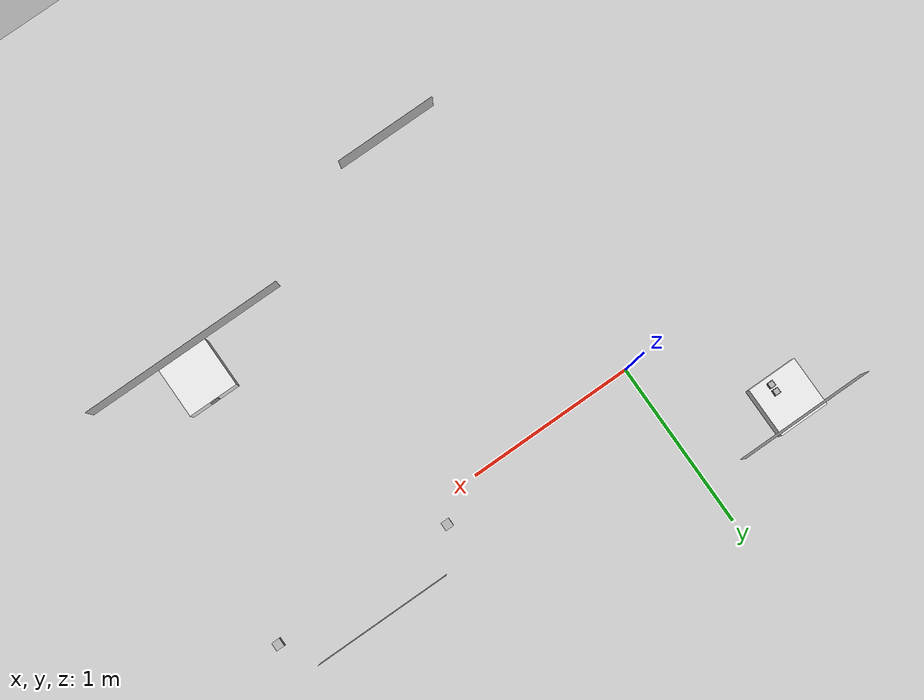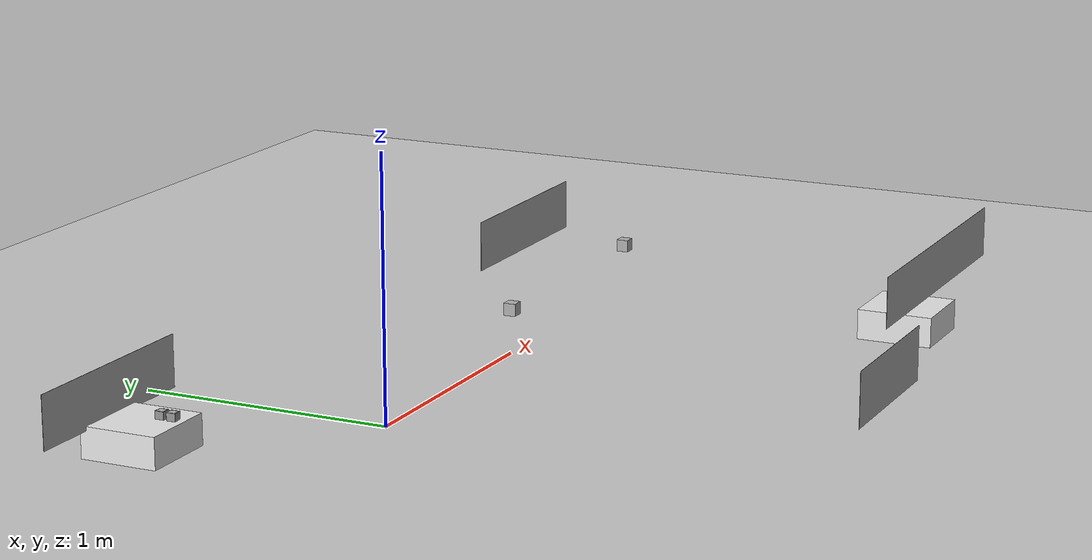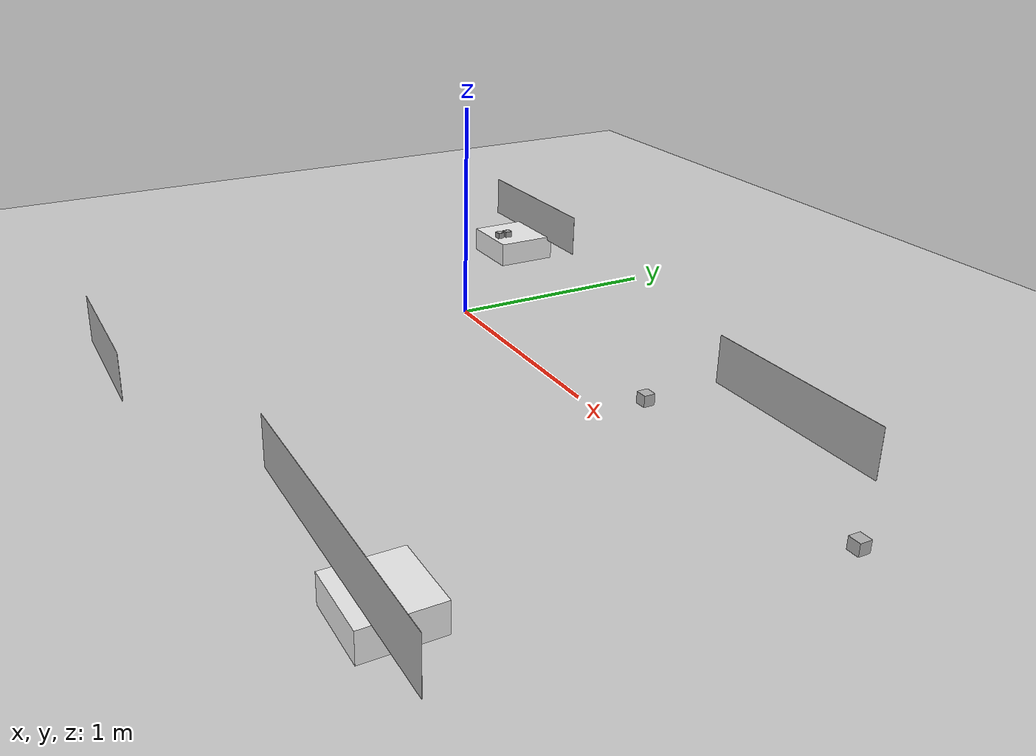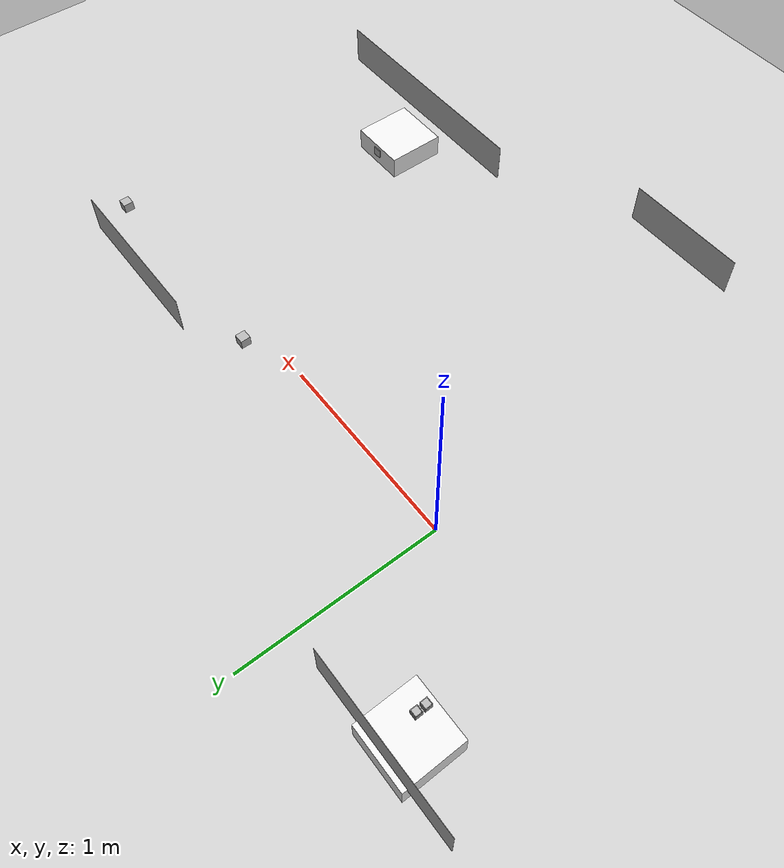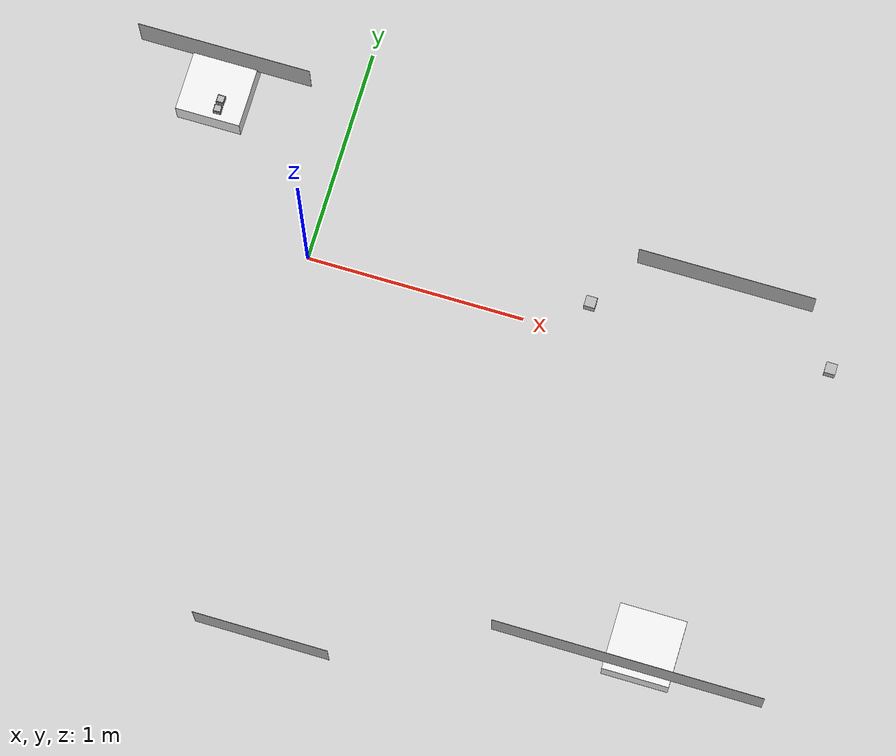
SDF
<sdf version="1.6">
 <world name="default">
  <model name="ground_plane">
   <static>1</static>
   <link name="link">
    <collision name="collision">
     <geometry><plane><normal>0 0 1</normal><size>100 100</size></plane></geometry>
     <surface><friction><ode><mu>100</mu><mu2>50</mu2></ode></friction></surface>
    </collision>
    <visual name="visual">
     <cast_shadows>0</cast_shadows>
     <geometry><plane><normal>0 0 1</normal><size>100 100</size></plane></geometry>
     <material>
      <script><uri>file://media/materials/scripts/gazebo.material</uri><name>Gazebo/Grey</name></script>
     </material>
    </visual>
   </link>
  </model>
  <model name="ar_box0_50_clone">
   <link name="link_0">
    <inertial>
     <mass>1.87342e-05</mass>
     <inertia>
      <ixx>9.25984e-08</ixx>
      <ixy>0</ixy>
      <ixz>0</ixz>
      <iyy>1.0155e-07</iyy>
      <iyz>0</iyz>
      <izz>1.22113e-07</izz>
     </inertia>
    </inertial>
    <visual name="visual">
     <geometry><box><size>0.05 0.05 0.05</size></box></geometry>
     <material>
      <lighting>1</lighting>
      <script>
       <uri>model://ar_box0_50/materials/scripts</uri>
       <uri>model://ar_box0_50/materials/textures</uri>
       <name>ArBox050/Image</name>
      </script>
      <ambient>0.3 0.3 0.3 1</ambient>
      <diffuse>0.7 0.7 0.7 1</diffuse>
      <specular>0.01 0.01 0.01 1</specular>
      <emissive>1 1 1 1</emissive>
     </material>
     <cast_shadows>0</cast_shadows>
    </visual>
   </link>
   <static>1</static>
   <pose>1.27243 0.128216 0.095465 0.005535 -1.6e-05 3.14155</pose>
  </model>
  <model name="ar_box0_50_clone_0">
   <link name="link_0">
    <inertial>
     <mass>1.87342e-05</mass>
     <inertia>
      <ixx>9.25984e-08</ixx>
      <ixy>0</ixy>
      <ixz>0</ixz>
      <iyy>1.0155e-07</iyy>
      <iyz>0</iyz>
      <izz>1.22113e-07</izz>
     </inertia>
    </inertial>
    <visual name="visual">
     <geometry><box><size>0.05 0.05 0.05</size></box></geometry>
     <material>
      <lighting>1</lighting>
      <script>
       <uri>model://ar_box0_50/materials/scripts</uri>
       <uri>model://ar_box0_50/materials/textures</uri>
       <name>ArBox050/Image</name>
      </script>
      <ambient>0.3 0.3 0.3 1</ambient>
      <diffuse>0.7 0.7 0.7 1</diffuse>
      <specular>0.01 0.01 0.01 1</specular>
      <emissive>1 1 1 1</emissive>
     </material>
     <cast_shadows>0</cast_shadows>
    </visual>
   </link>
   <static>1</static>
   <pose>2.36998 0.133385 0.097159 0.005535 -1.6e-05 3.14155</pose>
  </model>
  <model name="Textcnc_clone">
   <link name="link_0">
    <inertial>
     <mass>1</mass>
     <inertia>
      <ixx>0.166667</ixx>
      <ixy>0</ixy>
      <ixz>0</ixz>
      <iyy>0.166667</iyy>
      <iyz>0</iyz>
      <izz>0.166667</izz>
     </inertia>
    </inertial>
    <visual name="visual">
     <geometry><box><size>0.8 0.001 0.2</size></box></geometry>
     <material>
      <lighting>1</lighting>
      <script>
       <uri>model://Text/materials/scripts</uri>
       <uri>model://Text/materials/textures</uri>
       <name>Cnc/Image</name>
      </script>
      <ambient>0.3 0.3 0.3 1</ambient>
      <diffuse>0.7 0.7 0.7 1</diffuse>
      <specular>0.01 0.01 0.01 1</specular>
      <emissive>0 0 0 1</emissive>
      <shader type="vertex"><normal_map>__default__</normal_map></shader>
     </material>
     <cast_shadows>0</cast_shadows>
    </visual>
    <collision name="collision">
     <geometry><box><size>0.001 0.001 0.001</size></box></geometry>
     <surface>
      <friction>
       <ode><mu>1</mu><mu2>1</mu2><fdir1>0 0 0</fdir1><slip1>0</slip1><slip2>0</slip2></ode>
       <torsional>
        <coefficient>1</coefficient>
        <patch_radius>0</patch_radius>
        <surface_radius>0</surface_radius>
        <use_patch_radius>1</use_patch_radius>
        <ode><slip>0</slip></ode>
       </torsional>
      </friction>
      <bounce><restitution_coefficient>0</restitution_coefficient><threshold>1e+06</threshold></bounce>
      <contact>
       <collide_without_contact>0</collide_without_contact>
       <collide_without_contact_bitmask>1</collide_without_contact_bitmask>
       <collide_bitmask>1</collide_bitmask>
       <ode>
        <soft_cfm>0</soft_cfm>
        <soft_erp>0.2</soft_erp>
        <kp>1e+13</kp>
        <kd>1</kd>
        <max_vel>0.01</max_vel>
        <min_depth>0</min_depth>
       </ode>
       <bullet>
        <split_impulse>1</split_impulse>
        <split_impulse_penetration_threshold>-0.01</split_impulse_penetration_threshold>
        <soft_cfm>0</soft_cfm>
        <soft_erp>0.2</soft_erp>
        <kp>1e+13</kp>
        <kd>1</kd>
       </bullet>
      </contact>
     </surface>
    </collision>
   </link>
   <static>1</static>
   <pose>1.82386 0.341579 0.286139 0 -0 0</pose>
  </model>
  <model name="TextRecycle">
   <link name="link_0">
    <inertial>
     <mass>1</mass>
     <inertia>
      <ixx>0.166667</ixx>
      <ixy>0</ixy>
      <ixz>0</ixz>
      <iyy>0.166667</iyy>
      <iyz>0</iyz>
      <izz>0.166667</izz>
     </inertia>
    </inertial>
    <visual name="visual">
     <geometry><box><size>0.6 0.001 0.2</size></box></geometry>
     <material>
      <lighting>1</lighting>
      <script>
       <uri>model://Text/materials/scripts</uri>
       <uri>model://Text/materials/textures</uri>
       <name>Recycle/Image</name>
      </script>
      <ambient>0.3 0.3 0.3 1</ambient>
      <diffuse>0.7 0.7 0.7 1</diffuse>
      <specular>0.01 0.01 0.01 1</specular>
      <emissive>0 0 0 1</emissive>
      <shader type="vertex"><normal_map>__default__</normal_map></shader>
     </material>
     <cast_shadows>0</cast_shadows>
    </visual>
    <collision name="collision">
     <geometry><box><size>0.001 0.001 0.001</size></box></geometry>
     <surface>
      <friction>
       <ode><mu>1</mu><mu2>1</mu2><fdir1>0 0 0</fdir1><slip1>0</slip1><slip2>0</slip2></ode>
       <torsional>
        <coefficient>1</coefficient>
        <patch_radius>0</patch_radius>
        <surface_radius>0</surface_radius>
        <use_patch_radius>1</use_patch_radius>
        <ode><slip>0</slip></ode>
       </torsional>
      </friction>
      <bounce><restitution_coefficient>0</restitution_coefficient><threshold>1e+06</threshold></bounce>
      <contact>
       <collide_without_contact>0</collide_without_contact>
       <collide_without_contact_bitmask>1</collide_without_contact_bitmask>
       <collide_bitmask>1</collide_bitmask>
       <ode>
        <soft_cfm>0</soft_cfm>
        <soft_erp>0.2</soft_erp>
        <kp>1e+13</kp>
        <kd>1</kd>
        <max_vel>0.01</max_vel>
        <min_depth>0</min_depth>
       </ode>
       <bullet>
        <split_impulse>1</split_impulse>
        <split_impulse_penetration_threshold>-0.01</split_impulse_penetration_threshold>
        <soft_cfm>0</soft_cfm>
        <soft_erp>0.2</soft_erp>
        <kp>1e+13</kp>
        <kd>1</kd>
       </bullet>
      </contact>
     </surface>
    </collision>
   </link>
   <static>1</static>
   <pose>0.346909 -1.75225 0.32407 0 -0 0</pose>
  </model>
  <model name="Text-AO">
   <link name="link_0">
    <inertial>
     <mass>1</mass>
     <inertia>
      <ixx>0.166667</ixx>
      <ixy>0</ixy>
      <ixz>0</ixz>
      <iyy>0.166667</iyy>
      <iyz>0</iyz>
      <izz>0.166667</izz>
     </inertia>
    </inertial>
    <visual name="visual">
     <geometry><box><size>1.2 0.001 0.2</size></box></geometry>
     <material>
      <lighting>1</lighting>
      <script>
       <uri>model://Text/materials/scripts</uri>
       <uri>model://Text/materials/textures</uri>
       <name>AO/Image</name>
      </script>
      <ambient>0.3 0.3 0.3 1</ambient>
      <diffuse>0.7 0.7 0.7 1</diffuse>
      <specular>0.01 0.01 0.01 1</specular>
      <emissive>0 0 0 1</emissive>
      <shader type="vertex"><normal_map>__default__</normal_map></shader>
     </material>
     <cast_shadows>0</cast_shadows>
    </visual>
    <collision name="collision">
     <geometry><box><size>0.001 0.001 0.001</size></box></geometry>
     <surface>
      <friction>
       <ode><mu>1</mu><mu2>1</mu2><fdir1>0 0 0</fdir1><slip1>0</slip1><slip2>0</slip2></ode>
       <torsional>
        <coefficient>1</coefficient>
        <patch_radius>0</patch_radius>
        <surface_radius>0</surface_radius>
        <use_patch_radius>1</use_patch_radius>
        <ode><slip>0</slip></ode>
       </torsional>
      </friction>
      <bounce><restitution_coefficient>0</restitution_coefficient><threshold>1e+06</threshold></bounce>
      <contact>
       <collide_without_contact>0</collide_without_contact>
       <collide_without_contact_bitmask>1</collide_without_contact_bitmask>
       <collide_bitmask>1</collide_bitmask>
       <ode>
        <soft_cfm>0</soft_cfm>
        <soft_erp>0.2</soft_erp>
        <kp>1e+13</kp>
        <kd>1</kd>
        <max_vel>0.01</max_vel>
        <min_depth>0</min_depth>
       </ode>
       <bullet>
        <split_impulse>1</split_impulse>
        <split_impulse_penetration_threshold>-0.01</split_impulse_penetration_threshold>
        <soft_cfm>0</soft_cfm>
        <soft_erp>0.2</soft_erp>
        <kp>1e+13</kp>
        <kd>1</kd>
       </bullet>
      </contact>
     </surface>
    </collision>
   </link>
   <static>1</static>
   <pose>1.87367 -1.42218 0.302279 0 -0 0</pose>
  </model>
  <model name="Textdepot">
   <link name="link_0">
    <inertial>
     <mass>1</mass>
     <inertia>
      <ixx>0.166667</ixx>
      <ixy>0</ixy>
      <ixz>0</ixz>
      <iyy>0.166667</iyy>
      <iyz>0</iyz>
      <izz>0.166667</izz>
     </inertia>
    </inertial>
    <visual name="visual">
     <geometry><box><size>0.8 0.001 0.2</size></box></geometry>
     <material>
      <lighting>1</lighting>
      <script>
       <uri>model://Text/materials/scripts</uri>
       <uri>model://Text/materials/textures</uri>
       <name>Depot/Image</name>
      </script>
      <ambient>0.3 0.3 0.3 1</ambient>
      <diffuse>0.7 0.7 0.7 1</diffuse>
      <specular>0.01 0.01 0.01 1</specular>
      <emissive>0 0 0 1</emissive>
      <shader type="vertex"><normal_map>__default__</normal_map></shader>
     </material>
     <cast_shadows>0</cast_shadows>
    </visual>
    <collision name="collision">
     <geometry><box><size>0.001 0.001 0.001</size></box></geometry>
     <surface>
      <friction>
       <ode><mu>1</mu><mu2>1</mu2><fdir1>0 0 0</fdir1><slip1>0</slip1><slip2>0</slip2></ode>
       <torsional>
        <coefficient>1</coefficient>
        <patch_radius>0</patch_radius>
        <surface_radius>0</surface_radius>
        <use_patch_radius>1</use_patch_radius>
        <ode><slip>0</slip></ode>
       </torsional>
      </friction>
      <bounce><restitution_coefficient>0</restitution_coefficient><threshold>1e+06</threshold></bounce>
      <contact>
       <collide_without_contact>0</collide_without_contact>
       <collide_without_contact_bitmask>1</collide_without_contact_bitmask>
       <collide_bitmask>1</collide_bitmask>
       <ode>
        <soft_cfm>0</soft_cfm>
        <soft_erp>0.2</soft_erp>
        <kp>1e+13</kp>
        <kd>1</kd>
        <max_vel>0.01</max_vel>
        <min_depth>0</min_depth>
       </ode>
       <bullet>
        <split_impulse>1</split_impulse>
        <split_impulse_penetration_threshold>-0.01</split_impulse_penetration_threshold>
        <soft_cfm>0</soft_cfm>
        <soft_erp>0.2</soft_erp>
        <kp>1e+13</kp>
        <kd>1</kd>
       </bullet>
      </contact>
     </surface>
    </collision>
   </link>
   <static>1</static>
   <pose>-0.609677 0.745573 0.206607 0 -0 0</pose>
  </model>
  <model name="ar_box0_50_1">
   <link name="link_0">
    <inertial>
     <mass>1.87342e-05</mass>
     <inertia>
      <ixx>9.25984e-08</ixx>
      <ixy>0</ixy>
      <ixz>0</ixz>
      <iyy>1.0155e-07</iyy>
      <iyz>0</iyz>
      <izz>1.22113e-07</izz>
     </inertia>
    </inertial>
    <visual name="visual">
     <geometry><box><size>0.05 0.05 0.05</size></box></geometry>
     <material>
      <lighting>1</lighting>
      <script>
       <uri>model://ar_box0_50/materials/scripts</uri>
       <uri>model://ar_box0_50/materials/textures</uri>
       <name>ArBox050/Image</name>
      </script>
      <ambient>0.3 0.3 0.3 1</ambient>
      <diffuse>0.7 0.7 0.7 1</diffuse>
      <specular>0.01 0.01 0.01 1</specular>
      <emissive>1 1 1 1</emissive>
     </material>
     <cast_shadows>0</cast_shadows>
    </visual>
   </link>
   <static>1</static>
   <pose>1.91793 -1.15711 0.071038 0 -0 0</pose>
  </model>
  <model name="charge_static_2">
   <link name="link_0">
    <pose>0.001175 0.064666 -0.007829 0 -0 0</pose>
    <inertial>
     <mass>50</mass>
     <inertia>
      <ixx>0.166667</ixx>
      <ixy>0</ixy>
      <ixz>0</ixz>
      <iyy>0.166667</iyy>
      <iyz>0</iyz>
      <izz>0.166667</izz>
     </inertia>
    </inertial>
    <visual name="visual">
     <geometry><box><size>0.3 0.3 0.12</size></box></geometry>
     <material>
      <lighting>1</lighting>
      <script><uri>file://media/materials/scripts/gazebo.material</uri><name>Gazebo/White</name></script>
      <ambient>0.3 0.3 0.3 1</ambient>
      <diffuse>0.7 0.7 0.7 1</diffuse>
      <specular>0.01 0.01 0.01 1</specular>
      <emissive>0 0 1 1</emissive>
      <shader type="vertex"><normal_map>__default__</normal_map></shader>
     </material>
    </visual>
    <collision name="collision">
     <geometry><box><size>0.3 0.3 0.12</size></box></geometry>
     <surface>
      <friction><ode><mu>100</mu><mu2>50</mu2></ode></friction>
      <bounce><restitution_coefficient>0</restitution_coefficient><threshold>1e+06</threshold></bounce>
      <contact>
       <collide_without_contact>0</collide_without_contact>
       <collide_without_contact_bitmask>1</collide_without_contact_bitmask>
       <collide_bitmask>1</collide_bitmask>
       <ode>
        <soft_cfm>0</soft_cfm>
        <soft_erp>0.2</soft_erp>
        <kp>1e+13</kp>
        <kd>1</kd>
        <max_vel>0.01</max_vel>
        <min_depth>0</min_depth>
       </ode>
       <bullet>
        <split_impulse>1</split_impulse>
        <split_impulse_penetration_threshold>-0.01</split_impulse_penetration_threshold>
        <soft_cfm>0</soft_cfm>
        <soft_erp>0.2</soft_erp>
        <kp>1e+13</kp>
        <kd>1</kd>
       </bullet>
      </contact>
     </surface>
    </collision>
   </link>
   <static>1</static>
   <pose>-0.614633 0.55538 0.070826 0 -0 0</pose>
  </model>
  <model name="ar_box2_one">
   <link name="link_0">
    <inertial>
     <mass>0.2</mass>
     <inertia>
      <ixx>0.166667</ixx>
      <ixy>0</ixy>
      <ixz>0</ixz>
      <iyy>0.166667</iyy>
      <iyz>0</iyz>
      <izz>0.166667</izz>
     </inertia>
    </inertial>
    <visual name="visual">
     <geometry><box><size>0.035 0.035 0.03</size></box></geometry>
     <material>
      <lighting>1</lighting>
      <script><uri>file://media/materials/scripts/gazebo.material</uri><name>Gazebo/Grey</name></script>
      <ambient>0.3 0.3 0.3 1</ambient>
      <diffuse>0.7 0.7 0.7 1</diffuse>
      <specular>0.01 0.01 0.01 1</specular>
      <emissive>1 1 1 1</emissive>
      <shader type="vertex"><normal_map>__default__</normal_map></shader>
     </material>
    </visual>
    <collision name="collision">
     <geometry><cylinder><radius>0.0214</radius><length>0.03</length></cylinder></geometry>
     <surface>
      <friction><ode><mu>1</mu><mu2>1</mu2></ode></friction>
      <bounce><restitution_coefficient>0</restitution_coefficient><threshold>1e+06</threshold></bounce>
      <contact>
       <collide_without_contact>0</collide_without_contact>
       <collide_without_contact_bitmask>1</collide_without_contact_bitmask>
       <collide_bitmask>1</collide_bitmask>
       <ode>
        <soft_cfm>0</soft_cfm>
        <soft_erp>0.2</soft_erp>
        <kp>1e+13</kp>
        <kd>1</kd>
        <max_vel>0.01</max_vel>
        <min_depth>0</min_depth>
       </ode>
       <bullet>
        <split_impulse>1</split_impulse>
        <split_impulse_penetration_threshold>-0.01</split_impulse_penetration_threshold>
        <soft_cfm>0</soft_cfm>
        <soft_erp>0.2</soft_erp>
        <kp>1e+13</kp>
        <kd>1</kd>
       </bullet>
      </contact>
     </surface>
    </collision>
   </link>
   <model name="ar_box2">
    <link name="link_0">
     <inertial>
      <mass>1.87342e-05</mass>
      <inertia>
       <ixx>9.25984e-08</ixx>
       <ixy>0</ixy>
       <ixz>0</ixz>
       <iyy>1.0155e-07</iyy>
       <iyz>0</iyz>
       <izz>1.22113e-07</izz>
      </inertia>
     </inertial>
     <visual name="visual">
      <geometry><box><size>0.0298 0.0298 0.0305</size></box></geometry>
      <material>
       <lighting>1</lighting>
       <script>
        <uri>model://ar_box2/materials/scripts</uri>
        <uri>model://ar_box2/materials/textures</uri>
        <name>ArBox2/Image</name>
       </script>
       <ambient>0.3 0.3 0.3 1</ambient>
       <diffuse>0.7 0.7 0.7 1</diffuse>
       <specular>0.01 0.01 0.01 1</specular>
       <emissive>1 1 1 1</emissive>
      </material>
      <cast_shadows>0</cast_shadows>
     </visual>
     <collision name="collision">
      <geometry><box><size>0.03 0.03 0.03</size></box></geometry>
      <surface>
       <friction><ode><mu>2</mu><mu2>2</mu2></ode></friction>
       <bounce><restitution_coefficient>0</restitution_coefficient><threshold>1e+06</threshold></bounce>
       <contact>
        <collide_without_contact>0</collide_without_contact>
        <collide_without_contact_bitmask>1</collide_without_contact_bitmask>
        <collide_bitmask>1</collide_bitmask>
        <ode>
         <soft_cfm>0</soft_cfm>
         <soft_erp>0.2</soft_erp>
         <kp>1e+13</kp>
         <kd>1</kd>
         <max_vel>0.01</max_vel>
         <min_depth>0</min_depth>
        </ode>
        <bullet>
         <split_impulse>1</split_impulse>
         <split_impulse_penetration_threshold>-0.01</split_impulse_penetration_threshold>
         <soft_cfm>0</soft_cfm>
         <soft_erp>0.2</soft_erp>
         <kp>1e+13</kp>
         <kd>1</kd>
        </bullet>
       </contact>
      </surface>
     </collision>
    </link>
    <static>0</static>
   </model>
   <joint name="link_0_JOINT_0" type="fixed">
    <parent>link_0</parent>
    <child>ar_box2::link_0</child>
    <physics>
     <ode><limit><cfm>0</cfm><erp>0.2</erp></limit><suspension><cfm>0</cfm><erp>0.2</erp></suspension></ode>
    </physics>
   </joint>
   <static>0</static>
   <pose>-0.575559 0.513687 0.138004 3.14147 -0.000301 -3.12616</pose>
  </model>
  <model name="ar_box4_one">
   <link name="link_0">
    <inertial>
     <mass>0.2</mass>
     <inertia>
      <ixx>0.166667</ixx>
      <ixy>0</ixy>
      <ixz>0</ixz>
      <iyy>0.166667</iyy>
      <iyz>0</iyz>
      <izz>0.166667</izz>
     </inertia>
    </inertial>
    <visual name="visual">
     <geometry><box><size>0.035 0.035 0.03</size></box></geometry>
     <material>
      <lighting>1</lighting>
      <script><uri>file://media/materials/scripts/gazebo.material</uri><name>Gazebo/Grey</name></script>
      <ambient>0.3 0.3 0.3 1</ambient>
      <diffuse>0.7 0.7 0.7 1</diffuse>
      <specular>0.01 0.01 0.01 1</specular>
      <emissive>1 1 1 1</emissive>
      <shader type="vertex"><normal_map>__default__</normal_map></shader>
     </material>
    </visual>
    <collision name="collision">
     <geometry><cylinder><radius>0.0214</radius><length>0.03</length></cylinder></geometry>
     <surface>
      <friction><ode><mu>0.2</mu><mu2>0.2</mu2></ode></friction>
      <bounce><restitution_coefficient>0</restitution_coefficient><threshold>1e+06</threshold></bounce>
      <contact>
       <collide_without_contact>0</collide_without_contact>
       <collide_without_contact_bitmask>1</collide_without_contact_bitmask>
       <collide_bitmask>1</collide_bitmask>
       <ode>
        <soft_cfm>0</soft_cfm>
        <soft_erp>0.2</soft_erp>
        <kp>1e+13</kp>
        <kd>1</kd>
        <max_vel>0.01</max_vel>
        <min_depth>0</min_depth>
       </ode>
       <bullet>
        <split_impulse>1</split_impulse>
        <split_impulse_penetration_threshold>-0.01</split_impulse_penetration_threshold>
        <soft_cfm>0</soft_cfm>
        <soft_erp>0.2</soft_erp>
        <kp>1e+13</kp>
        <kd>1</kd>
       </bullet>
      </contact>
     </surface>
    </collision>
   </link>
   <model name="ar_box4">
    <link name="link_0">
     <inertial>
      <mass>1.87342e-05</mass>
      <inertia>
       <ixx>9.25984e-08</ixx>
       <ixy>0</ixy>
       <ixz>0</ixz>
       <iyy>1.0155e-07</iyy>
       <iyz>0</iyz>
       <izz>1.22113e-07</izz>
      </inertia>
     </inertial>
     <visual name="visual">
      <geometry><box><size>0.0298 0.0298 0.0305</size></box></geometry>
      <material>
       <lighting>1</lighting>
       <script>
        <uri>model://ar_box4/materials/scripts</uri>
        <uri>model://ar_box4/materials/textures</uri>
        <name>ArBox4/Image</name>
       </script>
       <ambient>0.3 0.3 0.3 1</ambient>
       <diffuse>0.7 0.7 0.7 1</diffuse>
       <specular>0.01 0.01 0.01 1</specular>
       <emissive>1 1 1 1</emissive>
      </material>
      <cast_shadows>0</cast_shadows>
     </visual>
     <collision name="collision">
      <geometry><box><size>0.03 0.03 0.03</size></box></geometry>
      <surface>
       <friction><ode><mu>2</mu><mu2>2</mu2></ode></friction>
       <bounce><restitution_coefficient>0</restitution_coefficient><threshold>1e+06</threshold></bounce>
       <contact>
        <collide_without_contact>0</collide_without_contact>
        <collide_without_contact_bitmask>1</collide_without_contact_bitmask>
        <collide_bitmask>1</collide_bitmask>
        <ode>
         <soft_cfm>0</soft_cfm>
         <soft_erp>0.2</soft_erp>
         <kp>1e+13</kp>
         <kd>1</kd>
         <max_vel>0.01</max_vel>
         <min_depth>0</min_depth>
        </ode>
        <bullet>
         <split_impulse>1</split_impulse>
         <split_impulse_penetration_threshold>-0.01</split_impulse_penetration_threshold>
         <soft_cfm>0</soft_cfm>
         <soft_erp>0.2</soft_erp>
         <kp>1e+13</kp>
         <kd>1</kd>
        </bullet>
       </contact>
      </surface>
     </collision>
    </link>
    <static>0</static>
   </model>
   <joint name="link_0_JOINT_0" type="fixed">
    <parent>link_0</parent>
    <child>ar_box4::link_0</child>
    <physics>
     <ode><limit><cfm>0</cfm><erp>0.2</erp></limit><suspension><cfm>0</cfm><erp>0.2</erp></suspension></ode>
    </physics>
   </joint>
   <static>0</static>
   <pose>-0.575395 0.559631 0.137994 3.14149 -0.000305 3.12667</pose>
  </model>
  <model name="charge_static_4">
   <link name="link_0">
    <pose>0.001175 0.064666 -0.007829 0 -0 0</pose>
    <inertial>
     <mass>50</mass>
     <inertia>
      <ixx>0.166667</ixx>
      <ixy>0</ixy>
      <ixz>0</ixz>
      <iyy>0.166667</iyy>
      <iyz>0</iyz>
      <izz>0.166667</izz>
     </inertia>
    </inertial>
    <visual name="visual">
     <geometry><box><size>0.3 0.3 0.12</size></box></geometry>
     <material>
      <lighting>1</lighting>
      <script><uri>file://media/materials/scripts/gazebo.material</uri><name>Gazebo/White</name></script>
      <ambient>0.3 0.3 0.3 1</ambient>
      <diffuse>0.7 0.7 0.7 1</diffuse>
      <specular>0.01 0.01 0.01 1</specular>
      <emissive>0 0 1 1</emissive>
      <shader type="vertex"><normal_map>__default__</normal_map></shader>
     </material>
    </visual>
    <collision name="collision">
     <geometry><box><size>0.3 0.3 0.12</size></box></geometry>
     <surface>
      <friction><ode><mu>100</mu><mu2>50</mu2></ode></friction>
      <bounce><restitution_coefficient>0</restitution_coefficient><threshold>1e+06</threshold></bounce>
      <contact>
       <collide_without_contact>0</collide_without_contact>
       <collide_without_contact_bitmask>1</collide_without_contact_bitmask>
       <collide_bitmask>1</collide_bitmask>
       <ode>
        <soft_cfm>0</soft_cfm>
        <soft_erp>0.2</soft_erp>
        <kp>1e+13</kp>
        <kd>1</kd>
        <max_vel>0.01</max_vel>
        <min_depth>0</min_depth>
       </ode>
       <bullet>
        <split_impulse>1</split_impulse>
        <split_impulse_penetration_threshold>-0.01</split_impulse_penetration_threshold>
        <soft_cfm>0</soft_cfm>
        <soft_erp>0.2</soft_erp>
        <kp>1e+13</kp>
        <kd>1</kd>
       </bullet>
      </contact>
     </surface>
    </collision>
   </link>
   <static>1</static>
   <pose>1.91925 -1.35097 0.065052 0 -0 0</pose>
  </model>
 </world>
</sdf>
